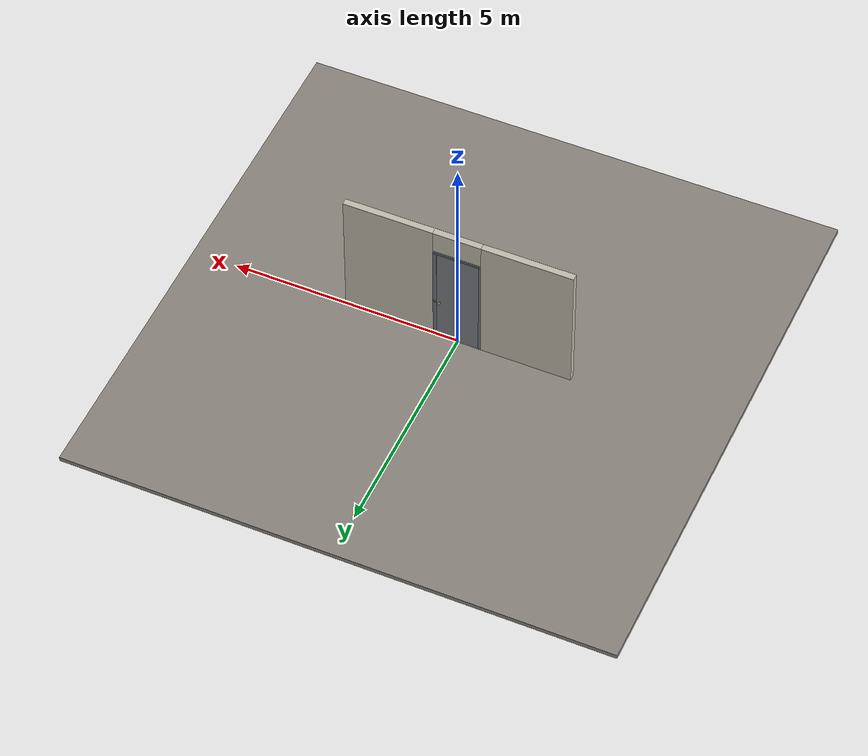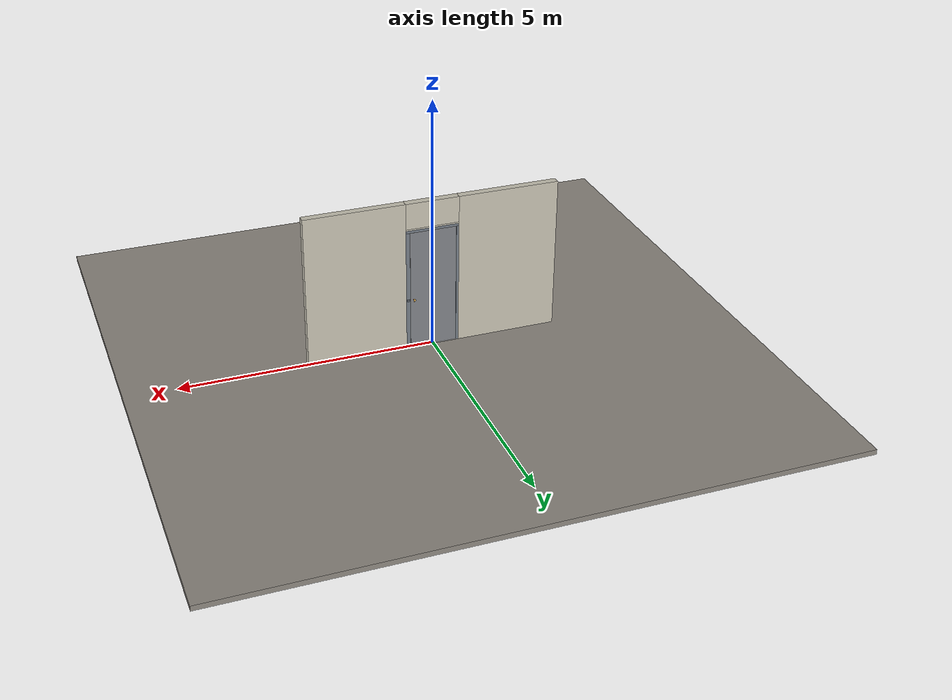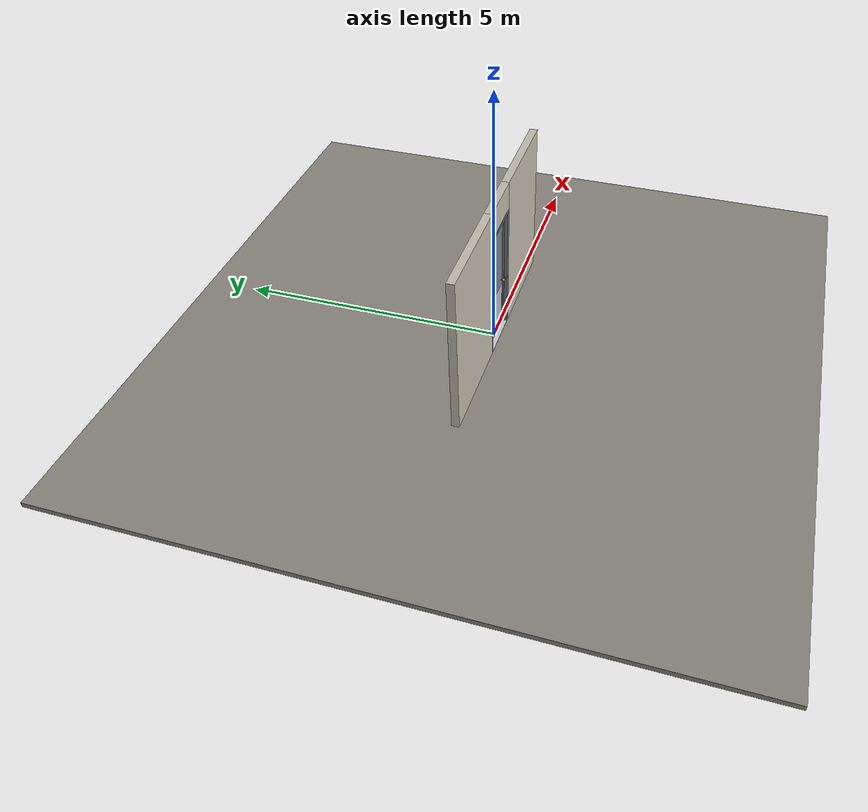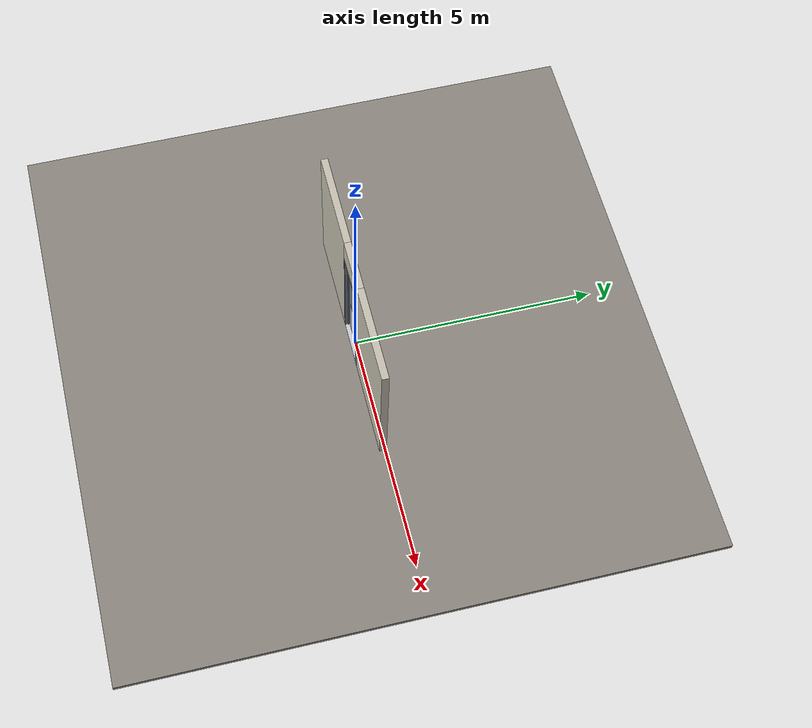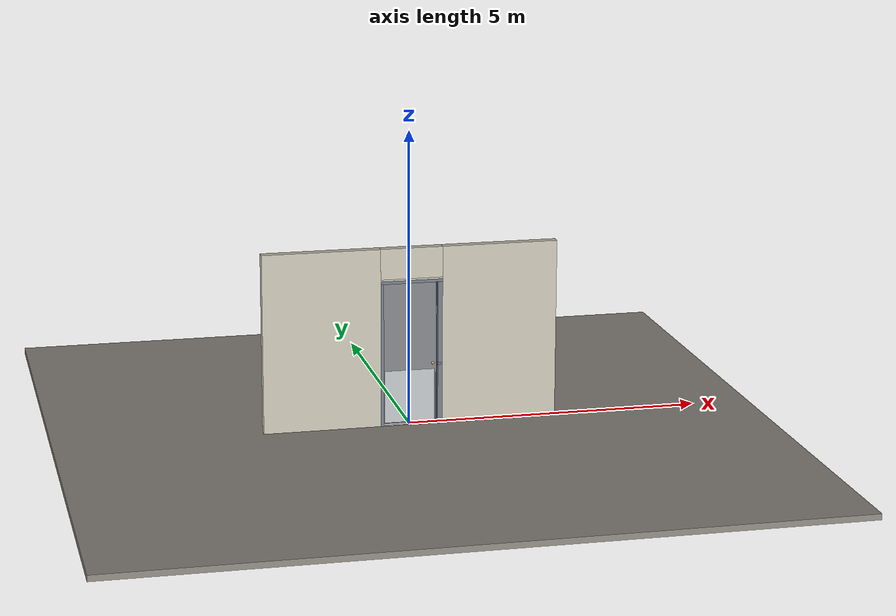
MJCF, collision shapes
<?xml version="1.0" ?>
<mujoco model="db0979_swing_single_full">
  <compiler angle="radian" meshdir="../../hardware" texturedir="../../textures" autolimits="true" inertiafromgeom="false"/>
  <option timestep="0.002" integrator="implicitfast" cone="elliptic" impratio="10" noslip_iterations="3">
    <flag multiccd="enable"/>
  </option>
  <size memory="16M"/>
  <default>
    <geom condim="4" solref="0.005 1" solimp="0.95 0.99 0.001"/>
    <joint solreflimit="0.005 1" solimplimit="0.95 0.99 0.001"/>
    <tendon solreflimit="0.005 1"/>
    <equality solref="0.002 1"/>
  </default>
  <visual>
    <headlight ambient="0.4 0.4 0.4" diffuse="0.7 0.7 0.7" specular="0.2 0.2 0.2"/>
    <quality shadowsize="4096"/>
    <map znear="0.01" zfar="60"/>
  </visual>
  <asset>
    <mesh name="hinge_e22b26c0c1" file="hinge_e22b26c0c1.obj"/>
    <mesh name="hinge_jamb_e1d088f8dc" file="hinge_jamb_e1d088f8dc.obj"/>
    <mesh name="knob_d1888f6f03" file="knob_d1888f6f03.obj"/>
    <material name="mat_floor" rgba="0.55 0.53 0.5 1" specular="0.2" shininess="0.15" reflectance="0"/>
    <material name="mat_wall" rgba="0.78 0.76 0.7 1" specular="0.2" shininess="0.1" reflectance="0"/>
    <material name="mat_leaf" rgba="0.5 0.51 0.53 1" specular="0.23" shininess="0.41" reflectance="0.02"/>
    <material name="mat_hinge" rgba="0.65 0.66 0.68 1" specular="0.74" shininess="0.5" reflectance="0.36"/>
    <material name="mat_op_brass" rgba="0.85 0.66 0.3 1" specular="0.8" shininess="0.75" reflectance="0.4"/>
    <material name="mat_trim" rgba="0.85 0.66 0.3 1" specular="0.8" shininess="0.75" reflectance="0.4"/>
    <material name="mat_bolt" rgba="0.85 0.66 0.3 1" specular="0.8" shininess="0.75" reflectance="0.4"/>
    <material name="mat_frame" rgba="0.45 0.48 0.52 1" specular="0.32" shininess="0.6" reflectance="0.08"/>
    <material name="mat_threshold" rgba="0.8 0.81 0.83 1" specular="0.8" shininess="0.6" reflectance="0.4"/>
    <material name="mat_kick" rgba="0.75 0.76 0.77 1" specular="0.8" shininess="0.65" reflectance="0.4"/>
    <texture name="skybox" type="skybox" builtin="gradient" rgb1="0.6 0.7 0.85" rgb2="0.9 0.92 0.95" width="256" height="256"/>
  </asset>
  <worldbody>
    <light name="sun" pos="1.5 -2.5 4" dir="-0.3 0.5 -0.8" directional="true" diffuse="0.8 0.8 0.8" specular="0.3 0.3 0.3" castshadow="true"/>
    <light name="fill" pos="-1.5 2.5 3" dir="0.3 -0.5 -0.7" directional="true" diffuse="0.35 0.35 0.4" castshadow="false"/>
    <camera name="robot_view" pos="0 -2.966312 2.043887" xyaxes="1 0 0 0 0.26963 0.962964" fovy="52"/>
    <camera name="far_view" pos="0 2.879313 2.043887" xyaxes="-1 0 0 0 -0.26963 0.962964" fovy="52"/>
    <camera name="iso" pos="2.221337 -2.498663 2.511538" xyaxes="0.741536 0.670913 0 -0.242917 0.268487 0.932151" fovy="46"/>
    <camera name="detail_handle" pos="0.5665 -0.8685 1.32" xyaxes="0.97561 0.219512 0 -0.070934 0.315262 0.94635" fovy="38"/>
    <geom name="floor" type="box" size="6 6 0.05" pos="0 0 -0.05" material="mat_floor" group="0" contype="1" conaffinity="1" friction="0.8 0.005 0.0001" density="2400"/>
    <geom name="wall_left" type="box" size="0.99475 0.0725 1.5255" pos="-1.50525 -0.0435 1.5255" material="mat_wall" group="0" contype="1" conaffinity="1" friction="0.6 0.005 0.0001" density="800"/>
    <geom name="wall_right" type="box" size="0.97975 0.0725 1.5255" pos="1.52025 -0.0435 1.5255" material="mat_wall" group="0" contype="1" conaffinity="1" friction="0.6 0.005 0.0001" density="800"/>
    <geom name="wall_header" type="box" size="0.5255 0.0725 0.26" pos="0.015 -0.0435 2.791" material="mat_wall" group="0" contype="1" conaffinity="1" friction="0.6 0.005 0.0001" density="800"/>
    <geom name="hinge_0_jamb" type="mesh" mesh="hinge_jamb_e1d088f8dc" pos="-0.4575 0.029 0.267" quat="0 1 0 0" material="mat_hinge" group="1" contype="0" conaffinity="0" density="7850"/>
    <geom name="hinge_1_jamb" type="mesh" mesh="hinge_jamb_e1d088f8dc" pos="-0.4575 0.029 1.232" quat="0 1 0 0" material="mat_hinge" group="1" contype="0" conaffinity="0" density="7850"/>
    <geom name="hinge_2_jamb" type="mesh" mesh="hinge_jamb_e1d088f8dc" pos="-0.4575 0.029 2.267" quat="0 1 0 0" material="mat_hinge" group="1" contype="0" conaffinity="0" density="7850"/>
    <geom name="jamb_hinge" type="box" size="0.025 0.0725 1.2255" pos="-0.4855 -0.0435 1.2255" material="mat_frame" group="0" contype="1" conaffinity="1" friction="0.6 0.005 0.0001" density="300"/>
    <geom name="strike_1040_wall_n" type="box" size="0.04 0.05325 0.0183" pos="0.5005 -0.06275 1.04" material="mat_frame" group="0" contype="1" conaffinity="1" friction="0.6 0.005 0.0001" density="300"/>
    <geom name="strike_1040_wall_p" type="box" size="0.04 0.008 0.0183" pos="0.5005 0.0175 1.04" material="mat_frame" group="0" contype="1" conaffinity="1" friction="0.6 0.005 0.0001" density="300"/>
    <geom name="strike_1040_ramp" type="box" size="0.04 0.018028 0.0183" pos="0.503782 0.018312 1.04" quat="0.957092 0 0 -0.289784" material="mat_frame" group="0" contype="1" conaffinity="1" friction="0.12 0.005 0.0001" density="300"/>
    <geom name="strike_1040_back" type="box" size="0.0285 0.0095 0.0183" pos="0.512 0 1.04" material="mat_frame" group="0" contype="1" conaffinity="1" friction="0.6 0.005 0.0001" density="300"/>
    <geom name="jamb_strike_0" type="box" size="0.04 0.0725 0.51085" pos="0.5005 -0.0435 0.51085" material="mat_frame" group="0" contype="1" conaffinity="1" friction="0.6 0.005 0.0001" density="300"/>
    <geom name="jamb_strike_1" type="box" size="0.04 0.0725 0.69635" pos="0.5005 -0.0435 1.75465" material="mat_frame" group="0" contype="1" conaffinity="1" friction="0.6 0.005 0.0001" density="300"/>
    <geom name="jamb_head" type="box" size="0.5255 0.0725 0.025" pos="0.015 -0.0435 2.476" material="mat_frame" group="0" contype="1" conaffinity="1" friction="0.6 0.005 0.0001" density="300"/>
    <geom name="head_stud" type="box" size="0.5255 0.0725 0.015" pos="0.015 -0.0435 2.516" material="mat_wall" group="0" contype="1" conaffinity="1" friction="0.6 0.005 0.0001" density="500"/>
    <geom name="stop_hinge" type="box" size="0.0055 0.016 1.2255" pos="-0.455 -0.0385 1.2255" material="mat_frame" group="0" contype="1" conaffinity="1" friction="0.6 0.005 0.0001" density="300"/>
    <geom name="stop_strike" type="box" size="0.0055 0.016 1.2255" pos="0.455 -0.0385 1.2255" material="mat_frame" group="0" contype="1" conaffinity="1" friction="0.6 0.005 0.0001" density="300"/>
    <geom name="stop_head" type="box" size="0.4605 0.016 0.0055" pos="0 -0.0385 2.4455" material="mat_frame" group="0" contype="1" conaffinity="1" friction="0.6 0.005 0.0001" density="300"/>
    <geom name="threshold" type="box" size="0.5105 0.0725 0.0065" pos="0 -0.0435 0.0065" material="mat_threshold" group="0" contype="1" conaffinity="1" friction="0.5 0.005 0.0001" density="2700"/>
    <site name="approach_point" pos="0 -1.5 0" quat="1 0 0 0" size="0.05" rgba="0.2 0.9 0.2 0.5" group="4"/>
    <site name="goal_point" pos="0 1.5 0" quat="1 0 0 0" size="0.05" rgba="0.2 0.9 0.2 0.5" group="4"/>
    <site name="door_plane_center" pos="0 0 1.2255" quat="1 0 0 0" size="0.02" rgba="0.2 0.9 0.2 0.5" group="4"/>
    <body name="leaf" pos="-0.4605 0 0">
      <inertial pos="0.454987 -0.003235 1.118456" mass="58.927993" quat="-0.498102 0.501072 0.501144 0.499676" diaginertia="4.128424476 29.650862561 33.755798086"/>
      <joint name="leaf_hinge" type="hinge" axis="0 0 1" pos="0.003 0.029 0" limited="true" range="0 1.570796" damping="0.357281" frictionloss="6.122871" armature="0.02"/>
      <geom name="leaf_slab" type="box" size="0.457 0.022 1.215" pos="0.46 0 1.232" material="mat_leaf" group="0" contype="1" conaffinity="1" friction="0.4 0.005 0.0001" density="1"/>
      <geom name="hinge_0" type="mesh" mesh="hinge_e22b26c0c1" pos="0.003 0.029 0.267" quat="0 1 0 0" material="mat_hinge" group="1" contype="0" conaffinity="0" density="7850"/>
      <geom name="hinge_1" type="mesh" mesh="hinge_e22b26c0c1" pos="0.003 0.029 1.232" quat="0 1 0 0" material="mat_hinge" group="1" contype="0" conaffinity="0" density="7850"/>
      <geom name="hinge_2" type="mesh" mesh="hinge_e22b26c0c1" pos="0.003 0.029 2.267" quat="0 1 0 0" material="mat_hinge" group="1" contype="0" conaffinity="0" density="7850"/>
      <geom name="leaf_latch_bolt_faceplate" type="box" size="0.0006 0.014 0.0283" pos="0.9164 0 1.04" material="mat_bolt" group="1" contype="0" conaffinity="0" density="8500"/>
      <geom name="armor_plate" type="box" size="0.427 0.0008 0.45" pos="0.46 -0.0228 0.477" material="mat_kick" group="2" contype="0" conaffinity="0" density="7900"/>
      <site name="leaf_edge_mid" pos="0.917 0 1.215" quat="1 0 0 0" size="0.02" rgba="0.2 0.9 0.2 0.5" group="4"/>
      <body name="leaf_handle" pos="0.847 0 1.04">
        <inertial pos="0 0 0" mass="1.151952" quat="0.5 -0.5 0.5 -0.5" diaginertia="0.000312514 0.004264603 0.004264603"/>
        <joint name="leaf_handle_hinge" type="hinge" axis="0 -1 0" limited="true" range="0 0.87" damping="0.143614" frictionloss="0.038" stiffness="0.5" springref="-0.5" armature="0.01"/>
        <geom name="leaf_handle_spindle" type="cylinder" size="0.006 0.03" pos="0 0 0" quat="0.707107 -0.707107 0 0" material="mat_op_brass" group="1" contype="0" conaffinity="0" density="7850"/>
        <geom name="leaf_handle_knob_n" type="mesh" mesh="knob_d1888f6f03" pos="0 -0.022 0" quat="0.707107 0.707107 0 0" material="mat_op_brass" group="1" contype="0" conaffinity="0" density="3000"/>
        <geom name="leaf_handle_knob_col_n" type="sphere" size="0.0243" pos="0 -0.0685 0" material="mat_op_brass" group="0" contype="1" conaffinity="1" friction="0.9 0.01 0.0001" density="3000"/>
        <geom name="leaf_handle_knob_neck_n" type="cylinder" size="0.011 0.012" pos="0 -0.034 0" quat="0.707107 -0.707107 0 0" material="mat_op_brass" group="3" contype="1" conaffinity="1" rgba="0.8 0.3 0.3 0.25" friction="0.6 0.005 0.0001" density="3000"/>
        <geom name="leaf_handle_knob_p" type="mesh" mesh="knob_d1888f6f03" pos="0 0.022 0" quat="-0.707107 0.707107 0 0" material="mat_op_brass" group="1" contype="0" conaffinity="0" density="3000"/>
        <geom name="leaf_handle_knob_col_p" type="sphere" size="0.0243" pos="0 0.0685 0" material="mat_op_brass" group="0" contype="1" conaffinity="1" friction="0.9 0.01 0.0001" density="3000"/>
        <geom name="leaf_handle_knob_neck_p" type="cylinder" size="0.011 0.012" pos="0 0.034 0" quat="0.707107 -0.707107 0 0" material="mat_op_brass" group="3" contype="1" conaffinity="1" rgba="0.8 0.3 0.3 0.25" friction="0.6 0.005 0.0001" density="3000"/>
        <site name="leaf_handle_grip_n" pos="0 -0.0685 0" quat="1 0 0 0" size="0.012" rgba="0.2 0.9 0.2 0.5" group="4"/>
        <site name="leaf_handle_grip_p" pos="0 0.0685 0" quat="1 0 0 0" size="0.012" rgba="0.2 0.9 0.2 0.5" group="4"/>
      </body>
      <body name="leaf_latch_bolt" pos="0.917 0 1.04">
        <inertial pos="-0.0055 0 0" mass="0.074627" quat="0.92388 -0.382683 0 0" diaginertia="0.000002271 0.000013255 0.000013255"/>
        <joint name="leaf_latch_bolt_slide" type="slide" axis="-1 0 0" limited="true" range="0 0.019" damping="2" frictionloss="0.3" stiffness="600" springref="-0.01" armature="0.1"/>
        <geom name="leaf_latch_bolt_capsule" type="capsule" size="0.008 0.0165" pos="-0.0055 0 0" quat="0.707107 0 0.707107 0" material="mat_bolt" group="0" contype="1" conaffinity="1" friction="0.2 0.005 0.0001" density="8500"/>
      </body>
    </body>
  </worldbody>
  <tendon>
    <fixed name="leaf_latch_bolt_coupling" limited="true" range="0 10">
      <joint joint="leaf_latch_bolt_slide" coef="1"/>
      <joint joint="leaf_handle_hinge" coef="-0.023457"/>
    </fixed>
  </tendon>
  <sensor>
    <jointpos name="leaf_hinge_pos" joint="leaf_hinge"/>
    <jointvel name="leaf_hinge_vel" joint="leaf_hinge"/>
    <jointpos name="leaf_handle_hinge_pos" joint="leaf_handle_hinge"/>
    <jointvel name="leaf_handle_hinge_vel" joint="leaf_handle_hinge"/>
    <jointpos name="leaf_latch_bolt_slide_pos" joint="leaf_latch_bolt_slide"/>
    <jointvel name="leaf_latch_bolt_slide_vel" joint="leaf_latch_bolt_slide"/>
  </sensor>
</mujoco>
